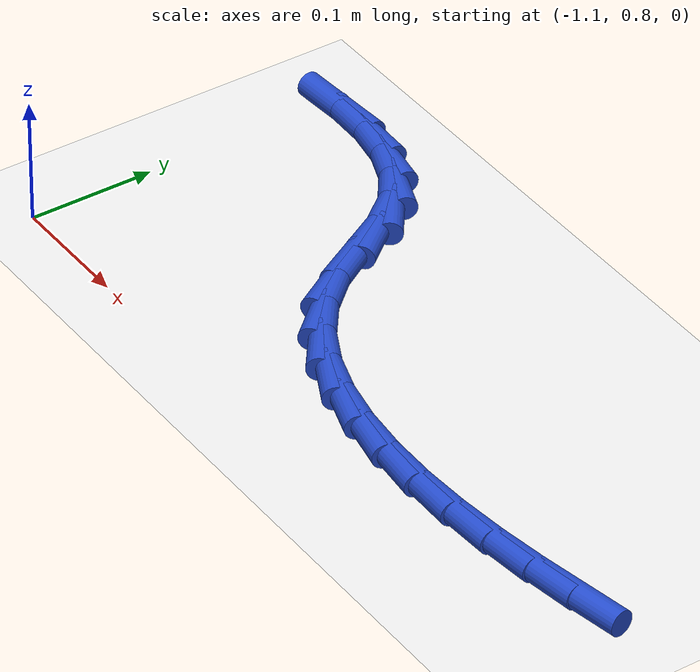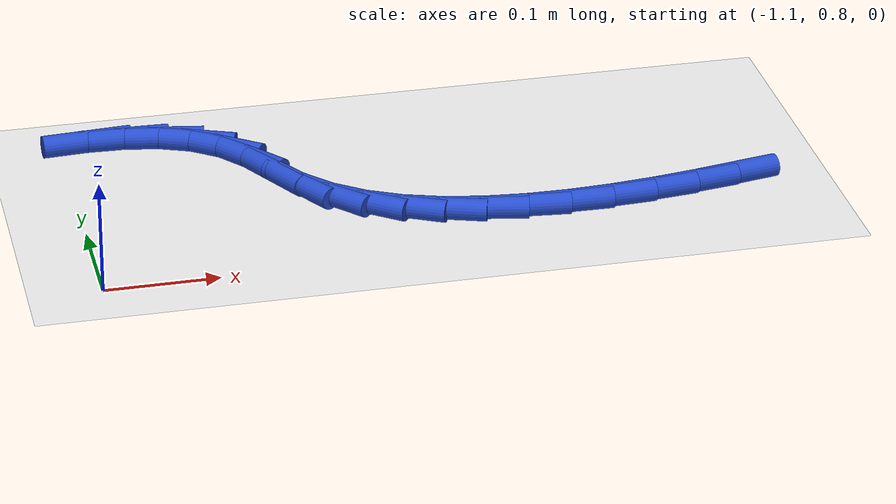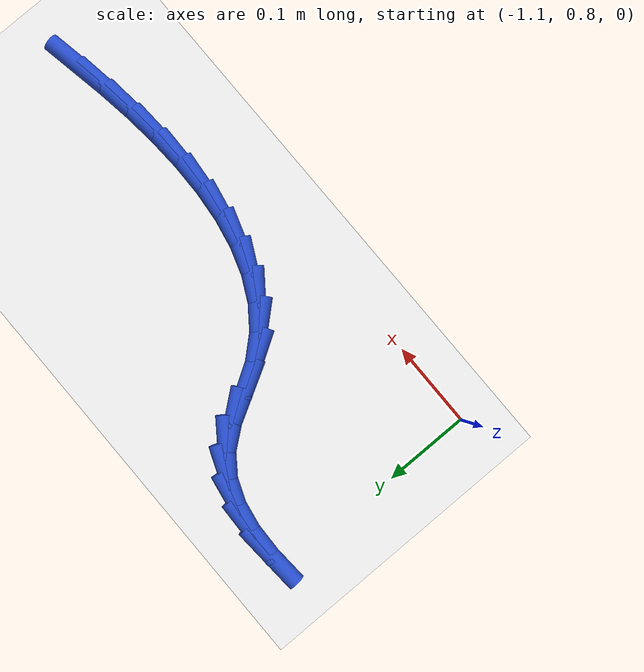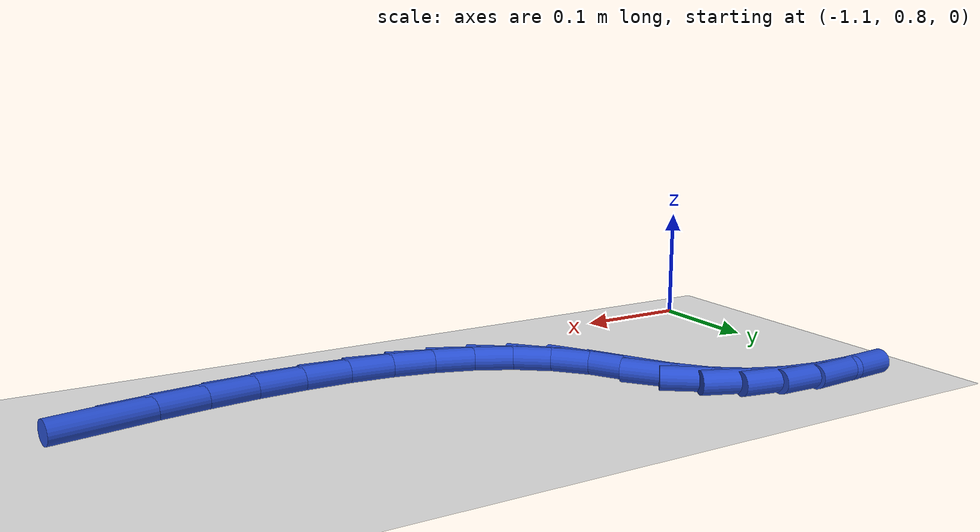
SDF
<sdf version="1.6">
 <world name="default">
  <model name="ground_plane">
   <static>1</static>
   <link name="link">
    <collision name="collision">
     <geometry><plane><normal>0 0 1</normal><size>100 100</size></plane></geometry>
     <surface><friction><ode><mu>100</mu><mu2>50</mu2></ode></friction></surface>
    </collision>
    <visual name="visual">
     <cast_shadows>0</cast_shadows>
     <geometry><plane><normal>0 0 1</normal><size>100 100</size></plane></geometry>
     <material>
      <script><uri>file://media/materials/scripts/gazebo.material</uri><name>Gazebo/WhiteGlow</name></script>
     </material>
    </visual>
   </link>
  </model>
  <model name="line">
   <link name="link_34">
    <pose>-0.5308642259131058 0.8709627098728076 0.01 0 1.57 0.18300490091923768</pose>
    <collision name="collision">
     <geometry><cylinder><radius>0.01</radius><length>0.08</length></cylinder></geometry>
    </collision>
    <visual name="visual">
     <material>
      <script><name>Gazebo/Blue</name><uri>file://media/materials/scripts/gazebo.material</uri></script>
     </material>
     <geometry><cylinder><radius>0.01</radius><length>0.08</length></cylinder></geometry>
    </visual>
   </link>
   <link name="link_35">
    <pose>-0.5691796229734953 0.8638714632881843 0.01 0 1.57 0.1478902709736078</pose>
    <collision name="collision">
     <geometry><cylinder><radius>0.01</radius><length>0.08</length></cylinder></geometry>
    </collision>
    <visual name="visual">
     <material>
      <script><name>Gazebo/Blue</name><uri>file://media/materials/scripts/gazebo.material</uri></script>
     </material>
     <geometry><cylinder><radius>0.01</radius><length>0.08</length></cylinder></geometry>
    </visual>
   </link>
   <link name="link_36">
    <pose>-0.6082233604661803 0.8580548060061809 0.01 0 1.57 0.1040383420772358</pose>
    <collision name="collision">
     <geometry><cylinder><radius>0.01</radius><length>0.08</length></cylinder></geometry>
    </collision>
    <visual name="visual">
     <material>
      <script><name>Gazebo/Blue</name><uri>file://media/materials/scripts/gazebo.material</uri></script>
     </material>
     <geometry><cylinder><radius>0.01</radius><length>0.08</length></cylinder></geometry>
    </visual>
   </link>
   <link name="link_37">
    <pose>-0.647487970984176 0.8539549781937761 0.01 0 1.57 0.05030309757663659</pose>
    <collision name="collision">
     <geometry><cylinder><radius>0.01</radius><length>0.08</length></cylinder></geometry>
    </collision>
    <visual name="visual">
     <material>
      <script><name>Gazebo/Blue</name><uri>file://media/materials/scripts/gazebo.material</uri></script>
     </material>
     <geometry><cylinder><radius>0.01</radius><length>0.08</length></cylinder></geometry>
    </visual>
   </link>
   <link name="link_38">
    <pose>-0.6864498452975923 0.851993420439604 0.01 0 1.57 -0.01568363847617912</pose>
    <collision name="collision">
     <geometry><cylinder><radius>0.01</radius><length>0.08</length></cylinder></geometry>
    </collision>
    <visual name="visual">
     <material>
      <script><name>Gazebo/Blue</name><uri>file://media/materials/scripts/gazebo.material</uri></script>
     </material>
     <geometry><cylinder><radius>0.01</radius><length>0.08</length></cylinder></geometry>
    </visual>
   </link>
   <link name="link_39">
    <pose>-0.7245853741765391 0.8525915733322984 0.01 0 1.57 -0.0969965013836253</pose>
    <collision name="collision">
     <geometry><cylinder><radius>0.01</radius><length>0.08</length></cylinder></geometry>
    </collision>
    <visual name="visual">
     <material>
      <script><name>Gazebo/Blue</name><uri>file://media/materials/scripts/gazebo.material</uri></script>
     </material>
     <geometry><cylinder><radius>0.01</radius><length>0.08</length></cylinder></geometry>
    </visual>
   </link>
   <link name="link_40">
    <pose>-0.7613709483911258 0.8561708774604933 0.01 0 1.57 -0.1973816205993514</pose>
    <collision name="collision">
     <geometry><cylinder><radius>0.01</radius><length>0.08</length></cylinder></geometry>
    </collision>
    <visual name="visual">
     <material>
      <script><name>Gazebo/Blue</name><uri>file://media/materials/scripts/gazebo.material</uri></script>
     </material>
     <geometry><cylinder><radius>0.01</radius><length>0.08</length></cylinder></geometry>
    </visual>
   </link>
   <link name="link_41">
    <pose>-0.7962829587114624 0.8631527734128228 0.01 0 1.57 -0.3208548305307442</pose>
    <collision name="collision">
     <geometry><cylinder><radius>0.01</radius><length>0.08</length></cylinder></geometry>
    </collision>
    <visual name="visual">
     <material>
      <script><name>Gazebo/Blue</name><uri>file://media/materials/scripts/gazebo.material</uri></script>
     </material>
     <geometry><cylinder><radius>0.01</radius><length>0.08</length></cylinder></geometry>
    </visual>
   </link>
   <link name="link_42">
    <pose>-0.8287977959076587 0.8739587017779207 0.01 0 1.57 -0.47050029324037296</pose>
    <collision name="collision">
     <geometry><cylinder><radius>0.01</radius><length>0.08</length></cylinder></geometry>
    </collision>
    <visual name="visual">
     <material>
      <script><name>Gazebo/Blue</name><uri>file://media/materials/scripts/gazebo.material</uri></script>
     </material>
     <geometry><cylinder><radius>0.01</radius><length>0.08</length></cylinder></geometry>
    </visual>
   </link>
   <link name="link_43">
    <pose>-0.8583918507498245 0.8890101031444209 0.01 0 1.57 -0.6460920082147606</pose>
    <collision name="collision">
     <geometry><cylinder><radius>0.01</radius><length>0.08</length></cylinder></geometry>
    </collision>
    <visual name="visual">
     <material>
      <script><name>Gazebo/Blue</name><uri>file://media/materials/scripts/gazebo.material</uri></script>
     </material>
     <geometry><cylinder><radius>0.01</radius><length>0.08</length></cylinder></geometry>
    </visual>
   </link>
   <link name="link_44">
    <pose>-0.8845415140080692 0.9087284181009574 0.01 0 1.57 -0.841205230907671</pose>
    <collision name="collision">
     <geometry><cylinder><radius>0.01</radius><length>0.08</length></cylinder></geometry>
    </collision>
    <visual name="visual">
     <material>
      <script><name>Gazebo/Blue</name><uri>file://media/materials/scripts/gazebo.material</uri></script>
     </material>
     <geometry><cylinder><radius>0.01</radius><length>0.08</length></cylinder></geometry>
    </visual>
   </link>
   <link name="link_45">
    <pose>-0.9067231764525033 0.9335350872361645 0.01 0 1.57 -1.022542333226232</pose>
    <collision name="collision">
     <geometry><cylinder><radius>0.01</radius><length>0.08</length></cylinder></geometry>
    </collision>
    <visual name="visual">
     <material>
      <script><name>Gazebo/Blue</name><uri>file://media/materials/scripts/gazebo.material</uri></script>
     </material>
     <geometry><cylinder><radius>0.01</radius><length>0.08</length></cylinder></geometry>
    </visual>
   </link>
   <link name="link_46">
    <pose>-0.9248538283114025 0.9632231336911607 0.01 0 1.57 -1.0584157965612788</pose>
    <collision name="collision">
     <geometry><cylinder><radius>0.01</radius><length>0.08</length></cylinder></geometry>
    </collision>
    <visual name="visual">
     <material>
      <script><name>Gazebo/Blue</name><uri>file://media/materials/scripts/gazebo.material</uri></script>
     </material>
     <geometry><cylinder><radius>0.01</radius><length>0.08</length></cylinder></geometry>
    </visual>
   </link>
   <link name="link_47">
    <pose>-0.9418088713638217 0.9933660624007312 0.01 0 1.57 -0.8980096886420139</pose>
    <collision name="collision">
     <geometry><cylinder><radius>0.01</radius><length>0.08</length></cylinder></geometry>
    </collision>
    <visual name="visual">
     <material>
      <script><name>Gazebo/Blue</name><uri>file://media/materials/scripts/gazebo.material</uri></script>
     </material>
     <geometry><cylinder><radius>0.01</radius><length>0.08</length></cylinder></geometry>
    </visual>
   </link>
   <link name="link_48">
    <pose>-0.9615020848817856 1.018081442661707 0.01 0 1.57 -0.6288896149423155</pose>
    <collision name="collision">
     <geometry><cylinder><radius>0.01</radius><length>0.08</length></cylinder></geometry>
    </collision>
    <visual name="visual">
     <material>
      <script><name>Gazebo/Blue</name><uri>file://media/materials/scripts/gazebo.material</uri></script>
     </material>
     <geometry><cylinder><radius>0.01</radius><length>0.08</length></cylinder></geometry>
    </visual>
   </link>
   <link name="link_49">
    <pose>-0.985336703452387 1.0354191119622747 0.01 0 1.57 -0.3773623143663472</pose>
    <collision name="collision">
     <geometry><cylinder><radius>0.01</radius><length>0.08</length></cylinder></geometry>
    </collision>
    <visual name="visual">
     <material>
      <script><name>Gazebo/Blue</name><uri>file://media/materials/scripts/gazebo.material</uri></script>
     </material>
     <geometry><cylinder><radius>0.01</radius><length>0.08</length></cylinder></geometry>
    </visual>
   </link>
   <link name="link_50">
    <pose>-1.0128637384003396 1.0463296575100602 0.01 0 1.57 -0.1771639495743758</pose>
    <collision name="collision">
     <geometry><cylinder><radius>0.01</radius><length>0.08</length></cylinder></geometry>
    </collision>
    <visual name="visual">
     <material>
      <script><name>Gazebo/Blue</name><uri>file://media/materials/scripts/gazebo.material</uri></script>
     </material>
     <geometry><cylinder><radius>0.01</radius><length>0.08</length></cylinder></geometry>
    </visual>
   </link>
   <link name="link_51">
    <pose>-1.0435911283031478 1.0518311223436991 0.01 0 1.57 -0.03319863875413387</pose>
    <collision name="collision">
     <geometry><cylinder><radius>0.01</radius><length>0.08</length></cylinder></geometry>
    </collision>
    <visual name="visual">
     <material>
      <script><name>Gazebo/Blue</name><uri>file://media/materials/scripts/gazebo.material</uri></script>
     </material>
     <geometry><cylinder><radius>0.01</radius><length>0.08</length></cylinder></geometry>
    </visual>
   </link>
   <link name="link_52">
    <pose>-1.0770268117383157 1.0529415495018273 0.01 0 1.57 0.06337772470116944</pose>
    <collision name="collision">
     <geometry><cylinder><radius>0.01</radius><length>0.08</length></cylinder></geometry>
    </collision>
    <visual name="visual">
     <material>
      <script><name>Gazebo/Blue</name><uri>file://media/materials/scripts/gazebo.material</uri></script>
     </material>
     <geometry><cylinder><radius>0.01</radius><length>0.08</length></cylinder></geometry>
    </visual>
   </link>
  </model>
 </world>
</sdf>
